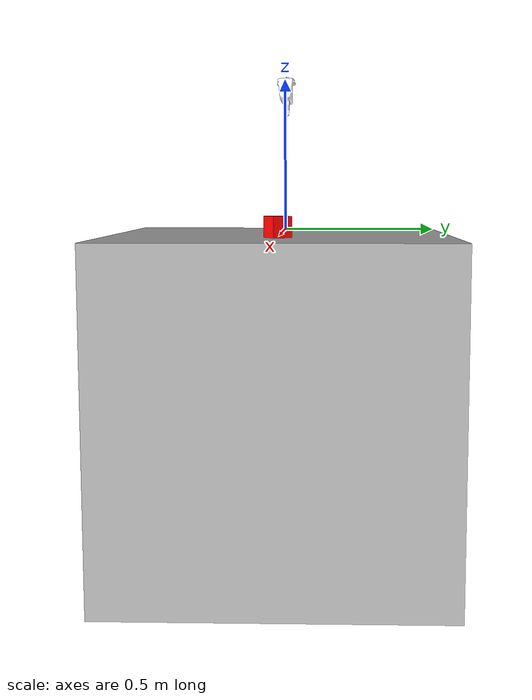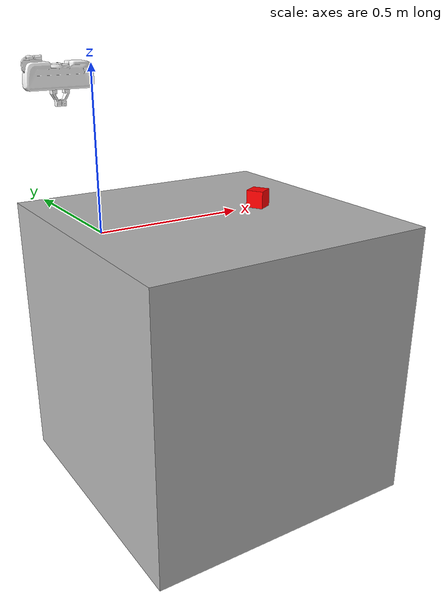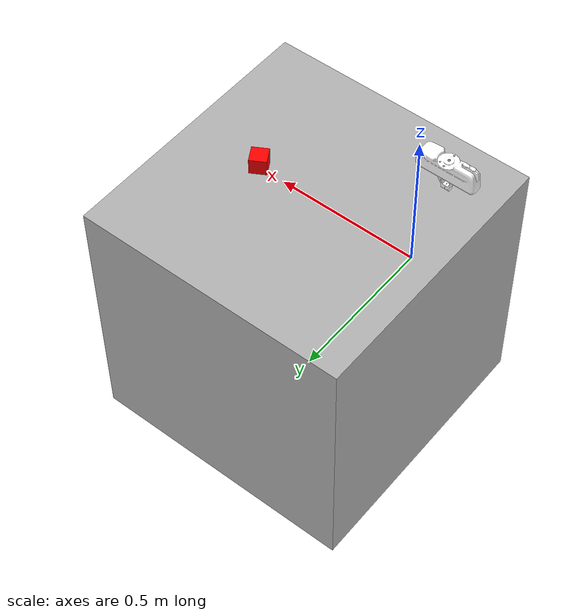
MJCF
<mujoco model="panda">
  <default>
    <default class="robot">
      <joint limited="true" damping="0.01" armature="0.01" frictionloss="0.01" actuatorfrcrange="-1000 1000" />
      <default class="visual">
        <geom material="visualgeom" contype="0" conaffinity="0" group="2" />
      </default>
      <default class="collision">
        <geom condim="6" conaffinity="15" friction="2 0.05 0.0001" solimp="0.6 1 0.036" group="3" />
      </default>
    </default>
  </default>

  <compiler angle="radian" meshdir="meshes" />

  <option integrator="implicitfast" cone="elliptic" impratio="100" timestep="0.01"/>

  <visual>
    <global ellipsoidinertia="true" />
  </visual>

  <asset>
    <material name="panda_white" rgba="1. 1. 1. 1." />
    <material name="default_material" rgba="0.7 0.7 0.7 1" />
    <mesh name="hand.obj" file="hand.obj" />
    <mesh name="finger.obj" file="finger.obj" />
  </asset>

  <worldbody>
    <light name="top" pos="0 0 30"/>
    <camera name="front_view" pos="0.0 -2.5 1.7" quat="0.8660254037844386 0.5 0.0 0.0" mode="fixed"/>
    <body mocap="true" name="panda_hand" pos="-0.1 0.0 0.5" quat="0.0 0.7071067811865476 0.7071067811865476 0.0">
      <geom name="panda_hand_collision" type="mesh" mesh="hand.obj" class="collision" />
      <geom name="panda_hand_visual" material="panda_white" type="mesh" mesh="hand.obj" class="visual" />
      <body name="panda_leftfinger" pos="0 0 0.0584">
        <joint name="panda_finger_joint1" type="slide" range="0.0 0.04" axis="0 1 0"/>
        <geom name="panda_leftfinger_collision" type="mesh" mesh="finger.obj" class="collision" />
        <geom name="panda_leftfinger_visual" material="panda_white" type="mesh" mesh="finger.obj" class="visual" />
      </body>
      <body name="panda_rightfinger" pos="0 0 0.0584">
        <joint name="panda_finger_joint2" type="slide" range="0.0 0.04" axis="0 -1 0"/>
        <geom name="panda_rightfinger_collision" quat="-1.0341155355510722e-13 -0.0 0.0 1.0" type="mesh" mesh="finger.obj" class="collision" />
        <geom name="panda_rightfinger_visual" quat="-1.0341155355510722e-13 -0.0 0.0 1.0" material="panda_white" type="mesh" mesh="finger.obj" class="visual" />
      </body>
      <site name="panda_hand_site" />
    </body>
    <body name="table" pos="0.4 0 -0.5">
      <geom name="table_collision" type="box" size="0.5 0.5 0.5" class="collision" mass="0.1" />
      <geom name="table_visual" material="default_material" type="box" size="0.5 0.5 0.5" class="visual" />
    </body>
    <body name="block" pos="0.6 0.0 .03" quat="0.96592583 0.0 0.0 0.25881905">
      <joint name="block_joint" type="free" damping="0.0005" />
      <geom name="block_collision" type="box" size="0.03 0.03 0.03" class="collision" mass="0.01" />
      <geom name="block_visual" material="default_material" rgba="1.0 0.0 0.0 1.0" type="box" size="0.03 0.03 0.03" class="visual" />
    </body>
  </worldbody>

  <actuator>
  <position name="panda_finger_joint1_pos" joint="panda_finger_joint1" kp="100" forcerange="-20.00000000 20.00000000" forcelimited="true" ctrlrange="0.0 0.04" ctrllimited="true" class="robot" />
    <position name="panda_finger_joint2_pos" joint="panda_finger_joint2" kp="100" forcerange="-20.00000000 20.00000000" forcelimited="true" ctrlrange="0.0 0.04" ctrllimited="true" class="robot" />
  </actuator>

  <contact>
    <exclude body1="panda_hand" body2="panda_leftfinger" />
    <exclude body1="panda_hand" body2="panda_rightfinger" />
  </contact>

  <sensor>
    <framepos name="hand_link_pos" objtype="site" objname="panda_hand_site" />
    <framequat name="hand_link_quat" objtype="site" objname="panda_hand_site" />
    <framelinvel name="hand_link_vel" objtype="site" objname="panda_hand_site" />
    <frameangvel name="hand_link_ang_vel" objtype="site" objname="panda_hand_site" />
  </sensor>
</mujoco>
